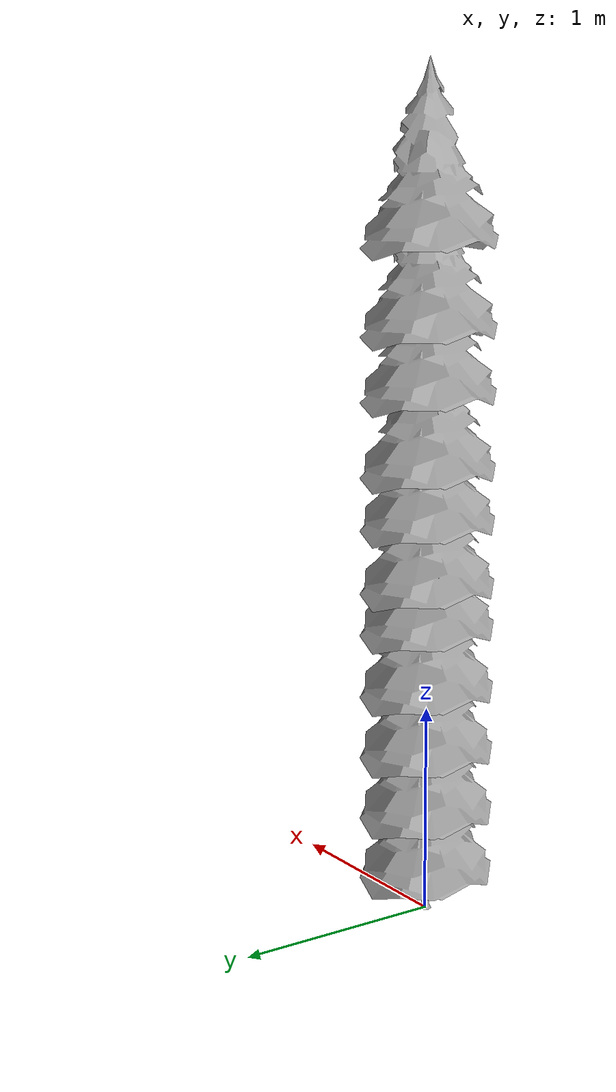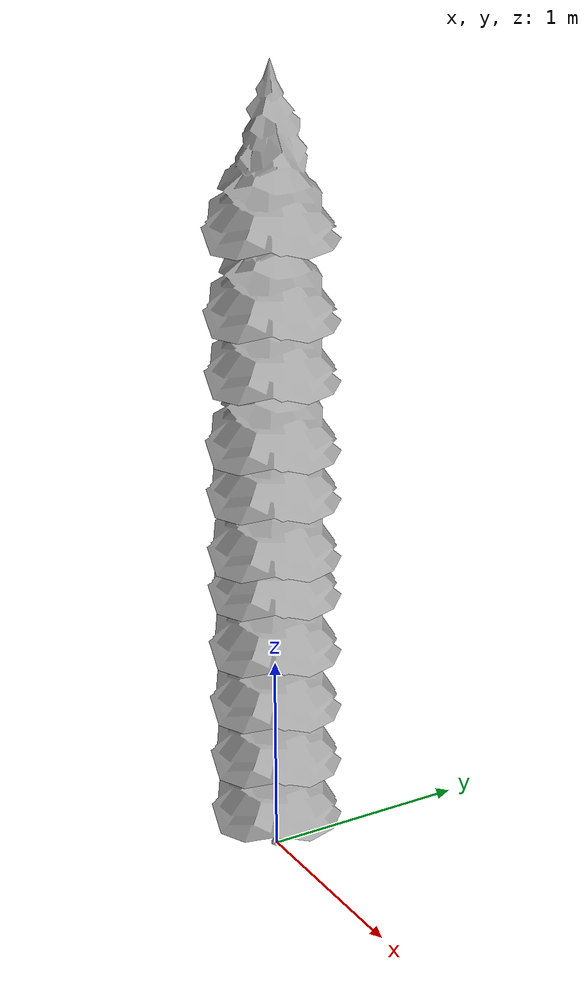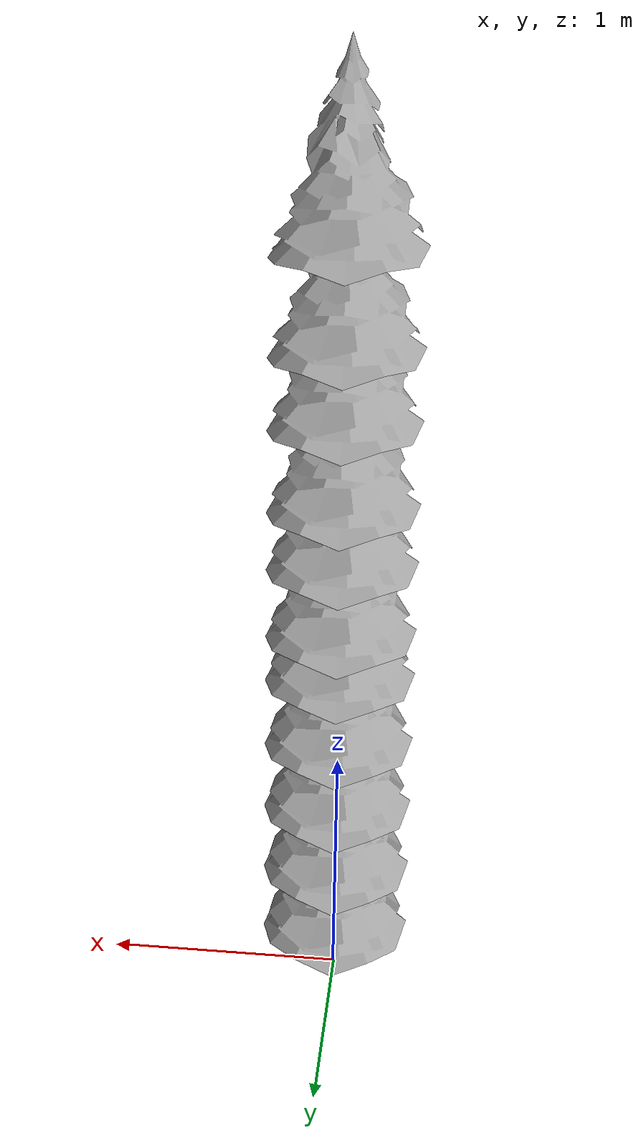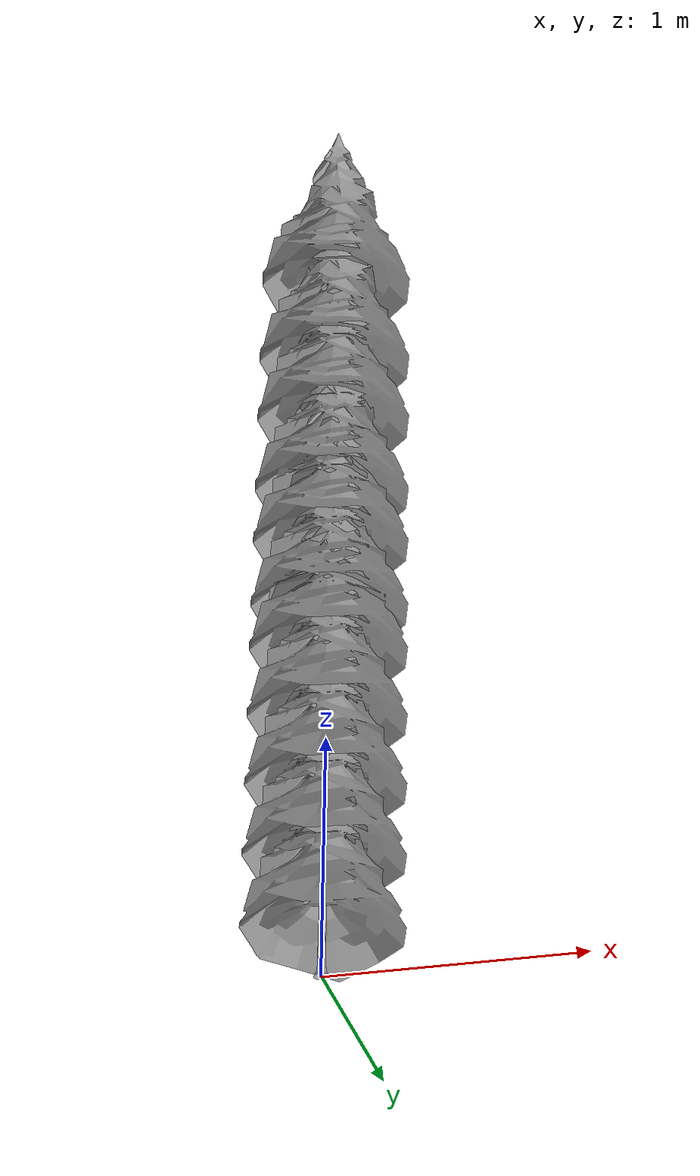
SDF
<?xml version="1.0" ?>
<sdf version="1.6">
  <model name="thin_4m_pine_tree">
    <static>true</static>
    <include>
      <name>tree0</name>
      <static>1</static>
      <uri>model://1m_pine_tree</uri>
      <pose>0 0 0 0 0 0</pose>
    </include>
    <include>
      <name>tree2</name>
      <static>1</static>
      <uri>model://1m_pine_tree</uri>
      <pose>0 0 0.3 0 0 0</pose>
    </include>
    <include>
      <name>tree3</name>
      <static>1</static>
      <uri>model://1m_pine_tree</uri>
      <pose>0 0 0.6 0 0 0</pose>
    </include>
    <include>
      <name>tree4</name>
      <static>1</static>
      <uri>model://1m_pine_tree</uri>
      <pose>0 0 0.9 0 0 0</pose>
    </include>
    <include>
      <name>tree6</name>
      <static>1</static>
      <uri>model://1m_pine_tree</uri>
      <pose>0 0 1.2 0 0 0</pose>
    </include>
    <include>
      <name>tree7</name>
      <static>1</static>
      <uri>model://1m_pine_tree</uri>
      <pose>0 0 1.4 0 0 0</pose>
    </include>
    <include>
      <name>tree8</name>
      <static>1</static>
      <uri>model://1m_pine_tree</uri>
      <pose>0 0 1.7 0 0 0</pose>
    </include>
    <include>
      <name>tree10</name>
      <static>1</static>
      <uri>model://1m_pine_tree</uri>
      <pose>0 0 1.95 0 0 0</pose>
    </include>
    <include>
      <name>tree11</name>
      <static>1</static>
      <uri>model://1m_pine_tree</uri>
      <pose>0 0 2.3 0 0 0</pose>
    </include>
    <include>
      <name>tree12</name>
      <static>1</static>
      <uri>model://1m_pine_tree</uri>
      <pose>0 0 2.6 0 0 0</pose>
    </include>
    <include>
      <name>tree13</name>
      <static>1</static>
      <uri>model://1m_pine_tree</uri>
      <pose>0 0 3.0 0 0 0</pose>
    </include>
  </model>
</sdf>

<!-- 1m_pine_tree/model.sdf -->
<sdf version="1.6">
  <model name="1m_pine_tree">
    <static>true</static>
    <link name="link">
      <collision name="collision">
        <pose>0 0 0 0 0 0</pose>
        <geometry>
          <mesh>
            <uri>model://1m_pine_tree/meshes/1m_pine_tree.dae</uri>
          </mesh>
        </geometry>
      </collision>
      <visual name="branch">
        <pose>0 0 0 0 0 0</pose>
        <geometry>
          <mesh>
            <uri>model://1m_pine_tree/meshes/1m_pine_tree.dae</uri>
            <submesh>
              <name>Branch</name>
            </submesh>
          </mesh>
        </geometry>
        <material>
          <script>
            <uri>model://1m_pine_tree/materials/scripts/</uri>
            <uri>model://1m_pine_tree/materials/textures/</uri>
            <name>PineTree/Branch</name>
          </script>
        </material>
      </visual>
      <visual name="bark">
        <pose>0 0 0 0 0 0</pose>
        <geometry>
          <mesh>
            <uri>model://1m_pine_tree/meshes/1m_pine_tree.dae</uri>
            <submesh>
              <name>Bark</name>
            </submesh>
          </mesh>
        </geometry>
        <material>
          <script>
            <uri>model://1m_pine_tree/materials/scripts/</uri>
            <uri>model://1m_pine_tree/materials/textures/</uri>
            <name>PineTree/Bark</name>
          </script>
        </material>
      </visual>
    </link>
  </model>
</sdf>
